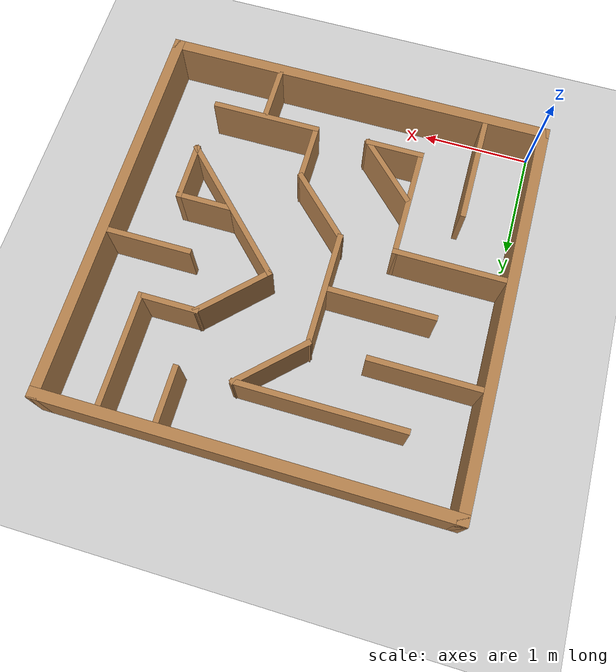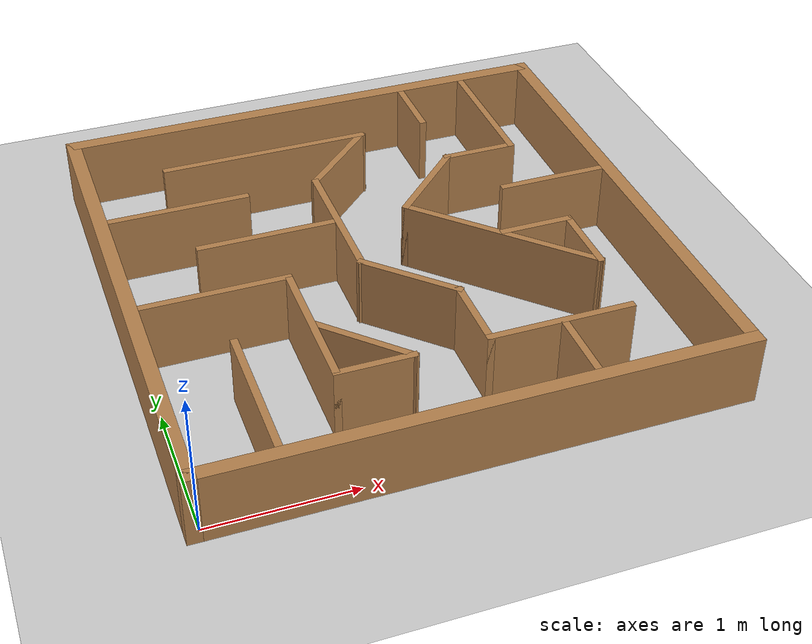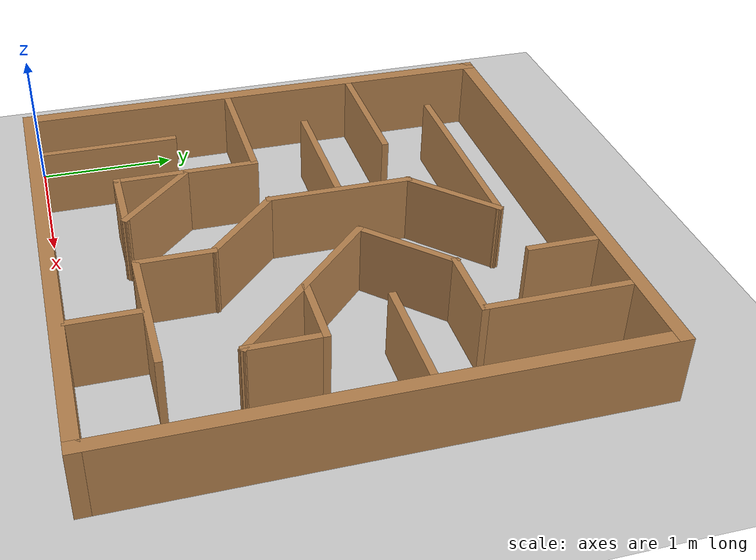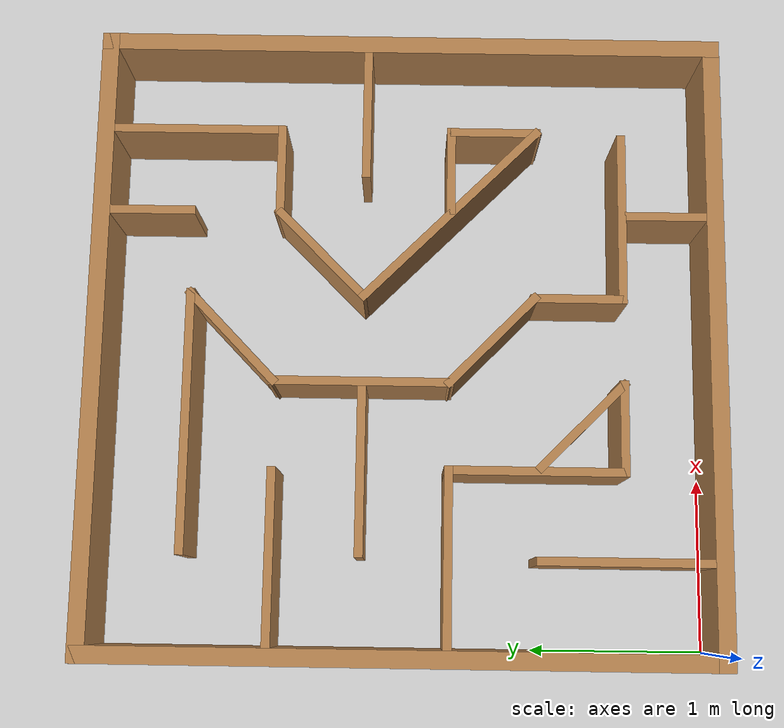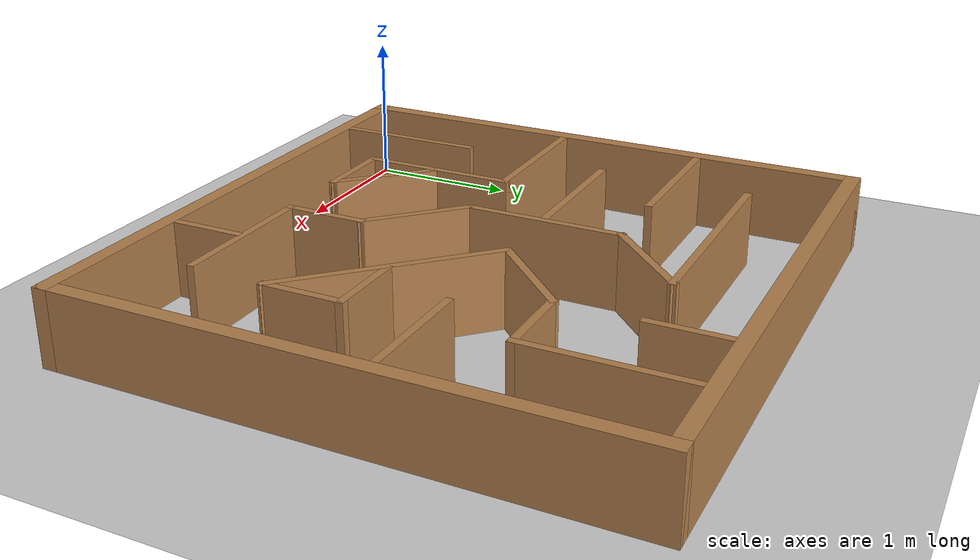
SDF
<sdf version="1.7">
 <world name="default">
  <light name="sun" type="directional">
   <pose>0 0 10 0 -0 0</pose>
   <diffuse>0.8 0.8 0.8 1</diffuse>
   <specular>0.2 0.2 0.2 1</specular>
   <attenuation>
    <range>1000</range>
    <constant>0.9</constant>
    <linear>0.01</linear>
    <quadratic>0.001</quadratic>
   </attenuation>
   <direction>-0.5 0.1 -0.9</direction>
   <spot><inner_angle>0</inner_angle><outer_angle>0</outer_angle><falloff>0</falloff></spot>
  </light>
  <model name="ground_plane">
   <static>1</static>
   <link name="link">
    <collision name="collision">
     <geometry><plane><normal>0 0 1</normal><size>100 100</size></plane></geometry>
     <surface>
      <contact><collide_bitmask>65535</collide_bitmask></contact>
      <friction><ode><mu>100</mu><mu2>50</mu2></ode></friction>
     </surface>
    </collision>
    <visual name="visual">
     <cast_shadows>0</cast_shadows>
     <geometry><plane><normal>0 0 1</normal><size>100 100</size></plane></geometry>
     <material>
      <script><uri>file://media/materials/scripts/gazebo.material</uri><name>Gazebo/Grey</name></script>
     </material>
    </visual>
   </link>
  </model>
  <gravity>0 0 -9.8</gravity>
  <magnetic_field>6e-06 2.3e-05 -4.2e-05</magnetic_field>
  <atmosphere type="adiabatic"/>
  <physics type="ode">
   <max_step_size>0.001</max_step_size>
   <real_time_factor>1</real_time_factor>
   <real_time_update_rate>1000</real_time_update_rate>
  </physics>
  <scene><ambient>0.4 0.4 0.4 1</ambient><background>0.7 0.7 0.7 1</background><shadows>1</shadows></scene>
  <spherical_coordinates>
   <surface_model>EARTH_WGS84</surface_model>
   <latitude_deg>0</latitude_deg>
   <longitude_deg>0</longitude_deg>
   <elevation>0</elevation>
   <heading_deg>0</heading_deg>
  </spherical_coordinates>
  <model name="maze">
   <pose>1.75 1.75 0 0 -0 0</pose>
   <link name="Wall_10">
    <collision name="Wall_10_Collision">
     <geometry><box><size>1.02 0.05 0.5</size></box></geometry>
     <pose>0 0 0.25 0 -0 0</pose>
    </collision>
    <visual name="Wall_10_Visual">
     <pose>0 0 0.25 0 -0 0</pose>
     <geometry><box><size>1.02 0.05 0.5</size></box></geometry>
     <material>
      <script><uri>file://materials/scripts/seamless_wood.material</uri><name>Team08/SeamlessWood</name></script>
      <ambient>1 1 1 1</ambient>
     </material>
     <meta><layer>0</layer></meta>
    </visual>
    <pose>1.25 1.235 0 0 -0 -1.5708</pose>
   </link>
   <link name="Wall_12">
    <collision name="Wall_12_Collision">
     <geometry><box><size>0.5 0.05 0.5</size></box></geometry>
     <pose>0 0 0.25 0 -0 0</pose>
    </collision>
    <visual name="Wall_12_Visual">
     <pose>0 0 0.25 0 -0 0</pose>
     <geometry><box><size>0.5 0.05 0.5</size></box></geometry>
     <material>
      <script><uri>file://materials/scripts/seamless_wood.material</uri><name>Team08/SeamlessWood</name></script>
      <ambient>1 1 1 1</ambient>
     </material>
     <meta><layer>0</layer></meta>
    </visual>
    <pose>0.75 1.495 0 0 -0 -1.5708</pose>
   </link>
   <link name="Wall_16">
    <collision name="Wall_16_Collision">
     <geometry><box><size>0.55 0.05 0.5</size></box></geometry>
     <pose>0 0 0.25 0 -0 0</pose>
    </collision>
    <visual name="Wall_16_Visual">
     <pose>0 0 0.25 0 -0 0</pose>
     <geometry><box><size>0.55 0.05 0.5</size></box></geometry>
     <material>
      <script><uri>file://materials/scripts/seamless_wood.material</uri><name>Team08/SeamlessWood</name></script>
      <ambient>1 1 1 1</ambient>
     </material>
     <meta><layer>0</layer></meta>
    </visual>
    <pose>1 0.75 0 0 -0 3.14159</pose>
   </link>
   <link name="Wall_18">
    <collision name="Wall_18_Collision">
     <geometry><box><size>0.757107 0.05 0.5</size></box></geometry>
     <pose>0 0 0.25 0 -0 0</pose>
    </collision>
    <visual name="Wall_18_Visual">
     <pose>0 0 0.25 0 -0 0</pose>
     <geometry><box><size>0.757107 0.05 0.5</size></box></geometry>
     <material>
      <script><uri>file://materials/scripts/seamless_wood.material</uri><name>Team08/SeamlessWood</name></script>
      <ambient>1 1 1 1</ambient>
     </material>
     <meta><layer>0</layer></meta>
    </visual>
    <pose>0.5 0.5 0 0 -0 -2.35619</pose>
   </link>
   <link name="Wall_2">
    <collision name="Wall_2_Collision">
     <geometry><box><size>3.69 0.1 0.5</size></box></geometry>
     <pose>0 0 0.25 0 -0 0</pose>
    </collision>
    <visual name="Wall_2_Visual">
     <pose>0 0 0.25 0 -0 0</pose>
     <geometry><box><size>3.69 0.1 0.5</size></box></geometry>
     <material>
      <script><uri>file://materials/scripts/seamless_wood.material</uri><name>Team08/SeamlessWood</name></script>
      <ambient>0.509804 0.478431 0.490196 1</ambient>
     </material>
     <meta><layer>0</layer></meta>
    </visual>
    <pose>0 1.795 0 0 -0 0</pose>
   </link>
   <link name="Wall_20">
    <collision name="Wall_20_Collision">
     <geometry><box><size>1.46421 0.05 0.5</size></box></geometry>
     <pose>0 0 0.25 0 -0 0</pose>
    </collision>
    <visual name="Wall_20_Visual">
     <pose>0 0 0.25 0 -0 0</pose>
     <geometry><box><size>1.46421 0.05 0.5</size></box></geometry>
     <material>
      <script><uri>file://materials/scripts/seamless_wood.material</uri><name>Team08/SeamlessWood</name></script>
      <ambient>1 1 1 1</ambient>
     </material>
     <meta><layer>0</layer></meta>
    </visual>
    <pose>0.75 -0.25 0 0 -0 -0.785398</pose>
   </link>
   <link name="Wall_22">
    <collision name="Wall_22_Collision">
     <geometry><box><size>0.55 0.05 0.5</size></box></geometry>
     <pose>0 0 0.25 0 -0 0</pose>
    </collision>
    <visual name="Wall_22_Visual">
     <pose>0 0 0.25 0 -0 0</pose>
     <geometry><box><size>0.55 0.05 0.5</size></box></geometry>
     <material>
      <script><uri>file://materials/scripts/seamless_wood.material</uri><name>Team08/SeamlessWood</name></script>
      <ambient>1 1 1 1</ambient>
     </material>
     <meta><layer>0</layer></meta>
    </visual>
    <pose>1.25 -0.5 0 0 -0 1.5708</pose>
   </link>
   <link name="Wall_24">
    <collision name="Wall_24_Collision">
     <geometry><box><size>0.53 0.05 0.5</size></box></geometry>
     <pose>0 0 0.25 0 -0 0</pose>
    </collision>
    <visual name="Wall_24_Visual">
     <pose>0 0 0.25 0 -0 0</pose>
     <geometry><box><size>0.53 0.05 0.5</size></box></geometry>
     <material>
      <script><uri>file://materials/scripts/seamless_wood.material</uri><name>Team08/SeamlessWood</name></script>
      <ambient>1 1 1 1</ambient>
     </material>
     <meta><layer>0</layer></meta>
    </visual>
    <pose>1.01 -0.25 0 0 -0 3.14159</pose>
   </link>
   <link name="Wall_26">
    <collision name="Wall_26_Collision">
     <geometry><box><size>0.78 0.05 0.5</size></box></geometry>
     <pose>0 0 0.25 0 -0 0</pose>
    </collision>
    <visual name="Wall_26_Visual">
     <pose>0 0 0.25 0 -0 0</pose>
     <geometry><box><size>0.78 0.05 0.5</size></box></geometry>
     <material>
      <script><uri>file://materials/scripts/seamless_wood.material</uri><name>Team08/SeamlessWood</name></script>
      <ambient>1 1 1 1</ambient>
     </material>
     <meta><layer>0</layer></meta>
    </visual>
    <pose>1.355 0.25 0 0 -0 3.14159</pose>
   </link>
   <link name="Wall_28">
    <collision name="Wall_28_Collision">
     <geometry><box><size>0.5 0.05 0.5</size></box></geometry>
     <pose>0 0 0.25 0 -0 0</pose>
    </collision>
    <visual name="Wall_28_Visual">
     <pose>0 0 0.25 0 -0 0</pose>
     <geometry><box><size>0.5 0.05 0.5</size></box></geometry>
     <material>
      <script><uri>file://materials/scripts/seamless_wood.material</uri><name>Team08/SeamlessWood</name></script>
      <ambient>1 1 1 1</ambient>
     </material>
     <meta><layer>0</layer></meta>
    </visual>
    <pose>0.75 -1.515 0 0 -0 1.5708</pose>
   </link>
   <link name="Wall_30">
    <collision name="Wall_30_Collision">
     <geometry><box><size>1 0.05 0.5</size></box></geometry>
     <pose>0 0 0.25 0 -0 0</pose>
    </collision>
    <visual name="Wall_30_Visual">
     <pose>0 0 0.25 0 -0 0</pose>
     <geometry><box><size>1 0.05 0.5</size></box></geometry>
     <material>
      <script><uri>file://materials/scripts/seamless_wood.material</uri><name>Team08/SeamlessWood</name></script>
      <ambient>1 1 1 1</ambient>
     </material>
     <meta><layer>0</layer></meta>
    </visual>
    <pose>-1.25 -1.245 0 0 -0 1.5708</pose>
   </link>
   <link name="Wall_32">
    <collision name="Wall_32_Collision">
     <geometry><box><size>1 0.05 0.5</size></box></geometry>
     <pose>0 0 0.25 0 -0 0</pose>
    </collision>
    <visual name="Wall_32_Visual">
     <pose>0 0 0.25 0 -0 0</pose>
     <geometry><box><size>1 0.05 0.5</size></box></geometry>
     <material>
      <script><uri>file://materials/scripts/seamless_wood.material</uri><name>Team08/SeamlessWood</name></script>
      <ambient>1 1 1 1</ambient>
     </material>
     <meta><layer>0</layer></meta>
    </visual>
    <pose>-1.245 0.75 0 0 -0 0</pose>
   </link>
   <link name="Wall_34">
    <collision name="Wall_34_Collision">
     <geometry><box><size>1.02 0.05 0.5</size></box></geometry>
     <pose>0 0 0.25 0 -0 0</pose>
    </collision>
    <visual name="Wall_34_Visual">
     <pose>0 0 0.25 0 -0 0</pose>
     <geometry><box><size>1.02 0.05 0.5</size></box></geometry>
     <material>
      <script><uri>file://materials/scripts/seamless_wood.material</uri><name>Team08/SeamlessWood</name></script>
      <ambient>1 1 1 1</ambient>
     </material>
     <meta><layer>0</layer></meta>
    </visual>
    <pose>-1.235 -0.25 0 0 -0 0</pose>
   </link>
   <link name="Wall_36">
    <collision name="Wall_36_Collision">
     <geometry><box><size>1.05 0.05 0.5</size></box></geometry>
     <pose>0 0 0.25 0 -0 0</pose>
    </collision>
    <visual name="Wall_36_Visual">
     <pose>0 0 0.25 0 -0 0</pose>
     <geometry><box><size>1.05 0.05 0.5</size></box></geometry>
     <material>
      <script><uri>file://materials/scripts/seamless_wood.material</uri><name>Team08/SeamlessWood</name></script>
      <ambient>1 1 1 1</ambient>
     </material>
     <meta><layer>0</layer></meta>
    </visual>
    <pose>-0.75 -0.75 0 0 -0 -1.5708</pose>
   </link>
   <link name="Wall_38">
    <collision name="Wall_38_Collision">
     <geometry><box><size>0.55 0.05 0.5</size></box></geometry>
     <pose>0 0 0.25 0 -0 0</pose>
    </collision>
    <visual name="Wall_38_Visual">
     <pose>0 0 0.25 0 -0 0</pose>
     <geometry><box><size>0.55 0.05 0.5</size></box></geometry>
     <material>
      <script><uri>file://materials/scripts/seamless_wood.material</uri><name>Team08/SeamlessWood</name></script>
      <ambient>1 1 1 1</ambient>
     </material>
     <meta><layer>0</layer></meta>
    </visual>
    <pose>-0.5 -1.25 0 0 -0 0</pose>
   </link>
   <link name="Wall_4">
    <collision name="Wall_4_Collision">
     <geometry><box><size>3.69 0.1 0.5</size></box></geometry>
     <pose>0 0 0.25 0 -0 0</pose>
    </collision>
    <visual name="Wall_4_Visual">
     <pose>0 0 0.25 0 -0 0</pose>
     <geometry><box><size>3.69 0.1 0.5</size></box></geometry>
     <material>
      <script><uri>file://materials/scripts/seamless_wood.material</uri><name>Team08/SeamlessWood</name></script>
      <ambient>0.509804 0.478431 0.490196 1</ambient>
     </material>
     <meta><layer>0</layer></meta>
    </visual>
    <pose>1.795 0 0 0 -0 -1.5708</pose>
   </link>
   <link name="Wall_40">
    <collision name="Wall_40_Collision">
     <geometry><box><size>0.725 0.05 0.5</size></box></geometry>
     <pose>0 0 0.25 0 -0 0</pose>
    </collision>
    <visual name="Wall_40_Visual">
     <pose>0 0 0.25 0 -0 0</pose>
     <geometry><box><size>0.725 0.05 0.5</size></box></geometry>
     <material>
      <script><uri>file://materials/scripts/seamless_wood.material</uri><name>Team08/SeamlessWood</name></script>
      <ambient>1 1 1 1</ambient>
     </material>
     <meta><layer>0</layer></meta>
    </visual>
    <pose>-0.4885 -1.0115 0 0 -0 2.35619</pose>
   </link>
   <link name="Wall_42">
    <collision name="Wall_42_Collision">
     <geometry><box><size>1.525 0.05 0.5</size></box></geometry>
     <pose>0 0 0.25 0 -0 0</pose>
    </collision>
    <visual name="Wall_42_Visual">
     <pose>0 0 0.25 0 -0 0</pose>
     <geometry><box><size>1.525 0.05 0.5</size></box></geometry>
     <material>
      <script><uri>file://materials/scripts/seamless_wood.material</uri><name>Team08/SeamlessWood</name></script>
      <ambient>1 1 1 1</ambient>
     </material>
     <meta><layer>0</layer></meta>
    </visual>
    <pose>-0.4825 1.25 0 0 -0 0</pose>
   </link>
   <link name="Wall_44">
    <collision name="Wall_44_Collision">
     <geometry><box><size>0.753651 0.05 0.5</size></box></geometry>
     <pose>0 0 0.25 0 -0 0</pose>
    </collision>
    <visual name="Wall_44_Visual">
     <pose>0 0 0.25 0 -0 0</pose>
     <geometry><box><size>0.753651 0.05 0.5</size></box></geometry>
     <material>
      <script><uri>file://materials/scripts/seamless_wood.material</uri><name>Team08/SeamlessWood</name></script>
      <ambient>1 1 1 1</ambient>
     </material>
     <meta><layer>0</layer></meta>
    </visual>
    <pose>0.0025 1.005 0 0 -0 -2.37127</pose>
   </link>
   <link name="Wall_46">
    <collision name="Wall_46_Collision">
     <geometry><box><size>1.06 0.05 0.5</size></box></geometry>
     <pose>0 0 0.25 0 -0 0</pose>
    </collision>
    <visual name="Wall_46_Visual">
     <pose>0 0 0.25 0 -0 0</pose>
     <geometry><box><size>1.06 0.05 0.5</size></box></geometry>
     <material>
      <script><uri>file://materials/scripts/seamless_wood.material</uri><name>Team08/SeamlessWood</name></script>
      <ambient>1 1 1 1</ambient>
     </material>
     <meta><layer>0</layer></meta>
    </visual>
    <pose>-0.25 0.255 0 0 -0 -1.5708</pose>
   </link>
   <link name="Wall_48">
    <collision name="Wall_48_Collision">
     <geometry><box><size>0.970001 0.05 0.5</size></box></geometry>
     <pose>0 0 0.25 0 -0 0</pose>
    </collision>
    <visual name="Wall_48_Visual">
     <pose>0 0 0.25 0 -0 0</pose>
     <geometry><box><size>0.970001 0.05 0.5</size></box></geometry>
     <material>
      <script><uri>file://materials/scripts/seamless_wood.material</uri><name>Team08/SeamlessWood</name></script>
      <ambient>1 1 1 1</ambient>
     </material>
     <meta><layer>0</layer></meta>
    </visual>
    <pose>-0.76 0.249 0 0 -0 3.14159</pose>
   </link>
   <link name="Wall_50">
    <collision name="Wall_50_Collision">
     <geometry><box><size>0.750071 0.05 0.5</size></box></geometry>
     <pose>0 0 0.25 0 -0 0</pose>
    </collision>
    <visual name="Wall_50_Visual">
     <pose>0 0 0.25 0 -0 0</pose>
     <geometry><box><size>0.750071 0.05 0.5</size></box></geometry>
     <material>
      <script><uri>file://materials/scripts/seamless_wood.material</uri><name>Team08/SeamlessWood</name></script>
      <ambient>1 1 1 1</ambient>
     </material>
     <meta><layer>0</layer></meta>
    </visual>
    <pose>0 -0.495 0 0 -0 -0.775298</pose>
   </link>
   <link name="Wall_52">
    <collision name="Wall_52_Collision">
     <geometry><box><size>0.56 0.05 0.5</size></box></geometry>
     <pose>0 0 0.25 0 -0 0</pose>
    </collision>
    <visual name="Wall_52_Visual">
     <pose>0 0 0.25 0 -0 0</pose>
     <geometry><box><size>0.56 0.05 0.5</size></box></geometry>
     <material>
      <script><uri>file://materials/scripts/seamless_wood.material</uri><name>Team08/SeamlessWood</name></script>
      <ambient>1 1 1 1</ambient>
     </material>
     <meta><layer>0</layer></meta>
    </visual>
    <pose>0.25 -0.995 0 0 -0 -1.5708</pose>
   </link>
   <link name="Wall_54">
    <collision name="Wall_54_Collision">
     <geometry><box><size>1.02 0.05 0.5</size></box></geometry>
     <pose>0 0 0.25 0 -0 0</pose>
    </collision>
    <visual name="Wall_54_Visual">
     <pose>0 0 0.25 0 -0 0</pose>
     <geometry><box><size>1.02 0.05 0.5</size></box></geometry>
     <material>
      <script><uri>file://materials/scripts/seamless_wood.material</uri><name>Team08/SeamlessWood</name></script>
      <ambient>1 1 1 1</ambient>
     </material>
     <meta><layer>0</layer></meta>
    </visual>
    <pose>0.735 -1.25 0 0 -0 0</pose>
   </link>
   <link name="Wall_6">
    <collision name="Wall_6_Collision">
     <geometry><box><size>3.69 0.1 0.5</size></box></geometry>
     <pose>0 0 0.25 0 -0 0</pose>
    </collision>
    <visual name="Wall_6_Visual">
     <pose>0 0 0.25 0 -0 0</pose>
     <geometry><box><size>3.69 0.1 0.5</size></box></geometry>
     <material>
      <script><uri>file://materials/scripts/seamless_wood.material</uri><name>Team08/SeamlessWood</name></script>
      <ambient>0.509804 0.478431 0.490196 1</ambient>
     </material>
     <meta><layer>0</layer></meta>
    </visual>
    <pose>0 -1.795 0 0 -0 3.14159</pose>
   </link>
   <link name="Wall_8">
    <collision name="Wall_8_Collision">
     <geometry><box><size>3.69 0.1 0.5</size></box></geometry>
     <pose>0 0 0.25 0 -0 0</pose>
    </collision>
    <visual name="Wall_8_Visual">
     <pose>0 0 0.25 0 -0 0</pose>
     <geometry><box><size>3.69 0.1 0.5</size></box></geometry>
     <material>
      <script><uri>file://materials/scripts/seamless_wood.material</uri><name>Team08/SeamlessWood</name></script>
      <ambient>0.509804 0.478431 0.490196 1</ambient>
     </material>
     <meta><layer>0</layer></meta>
    </visual>
    <pose>-1.795 0 0 0 -0 1.5708</pose>
   </link>
   <static>1</static>
  </model>
 </world>
</sdf>
